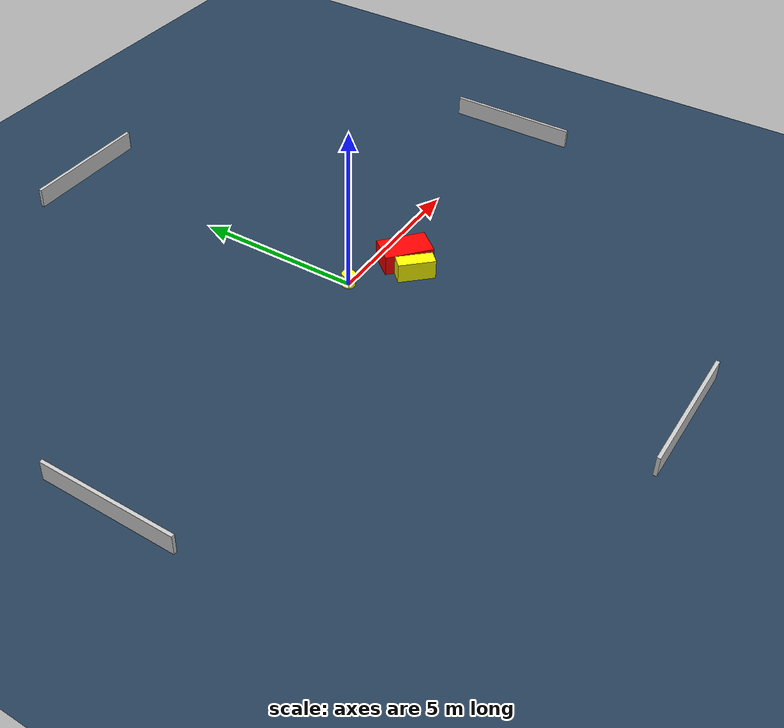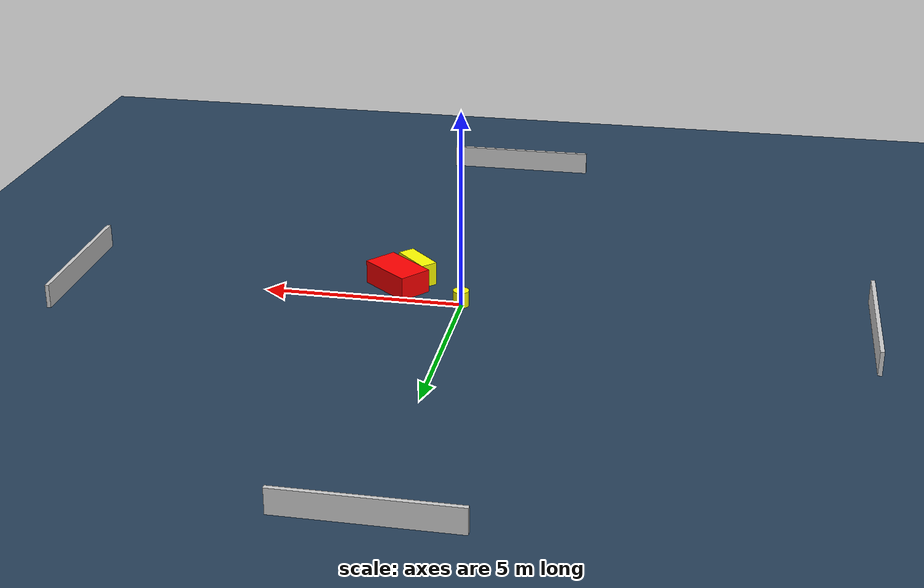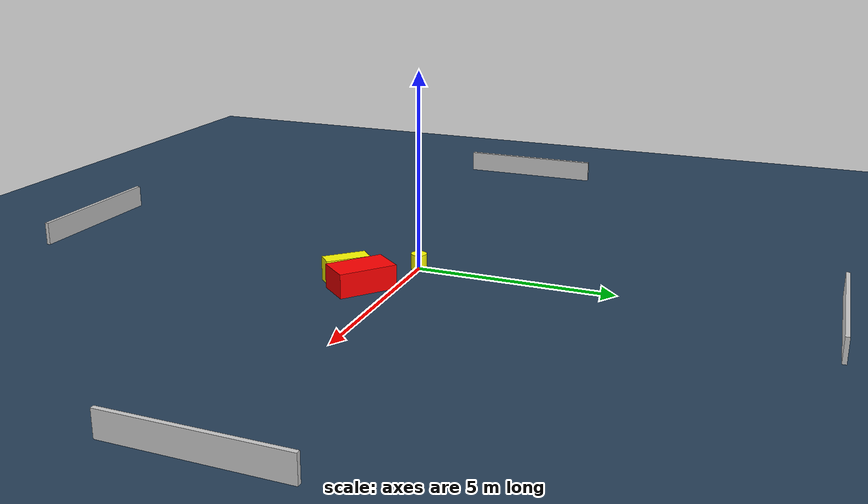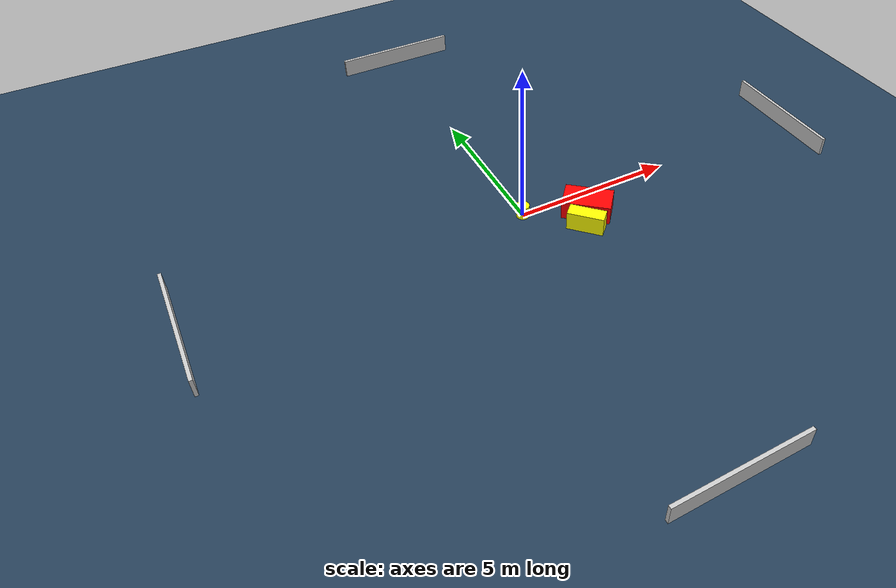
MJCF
<?xml version="1.0" ?>
<mujoco model="generated_environment">
  <option timestep="0.01" integrator="RK4" cone="elliptic"/>
  <default>
    <geom density="1"/>
  </default>
  <asset>
    <texture builtin="gradient" height="3072" name="skybox" rgb1="0.3 0.5 0.7" rgb2="0 0 0" type="skybox" width="512"/>
    <texture builtin="checker" height="300" name="groundplane" rgb1="0.2 0.3 0.4" rgb2="0.1 0.2 0.3" type="2d" width="300"/>
    <material name="groundplane" reflectance="0.2" texrepeat="5 5" texture="groundplane"/>
  </asset>
  <worldbody>
    <light dir="0 0 -1" directional="true" pos="0 0 1.5"/>
    <geom condim="3" friction="0.5 0.005 0.001" material="groundplane" name="floor" pos="0 0 0" size="0 0 0.05" type="plane"/>
    <body name="walls">
      <geom name="wall_1" condim="4" pos="-10.0 0.0 0.3" rgba="0.800000011920929 0.800000011920929 0.800000011920929 1.0" size="0.05 2.0 0.3" type="box"/>
      <geom name="wall_2" condim="4" pos="10.0 0.0 0.3" rgba="0.800000011920929 0.800000011920929 0.800000011920929 1.0" size="0.05 2.0 0.3" type="box"/>
      <geom name="wall_3" condim="4" pos="0.0 -10.0 0.3" rgba="0.800000011920929 0.800000011920929 0.800000011920929 1.0" size="2.0 0.05 0.3" type="box"/>
      <geom name="wall_4" condim="4" pos="0.0 10.0 0.3" rgba="0.800000011920929 0.800000011920929 0.800000011920929 1.0" size="2.0 0.05 0.3" type="box"/>
    </body>
    <body name="robot">
      <joint name="joint_x" type="slide" pos="0 0 0" axis="1 0 0"/>
      <joint name="joint_y" type="slide" pos="0 0 0" axis="0 1 0"/>
      <geom name="robot" type="cylinder" pos="0.0 0.0 0.2" size="0.2 0.2 0.0" mass="5.0" friction="1.0 0.005 0.0001" condim="4" rgba="1.0 1.0 0.0 1.0"/>
    </body>
    <body name="obstacle_1_movable">
      <geom name="obstacle_1_movable" condim="4" pos="1.3844786019562805 -1.3628181355043532 0.3" euler="0 0 224.3192035120332" friction="0.0 0.005 0.001" rgba="1.0 1.0 0.0 1.0" size="0.2159085354641989 0.5532499889962952 0.3" type="box" mass="0.1"/>
      <joint type="free"/>
    </body>
    <body name="obstacle_2_static">
      <geom name="obstacle_2_static" condim="4" pos="1.7820069117228357 -0.7756558017529116 0.3" euler="0 0 320.1399014804425" friction="0.0 0.005 0.001" rgba="1.0 0.0 0.0 1.0" size="0.7323895587464901 0.4313798671179188 0.3" type="box"/>
    </body>
  </worldbody>
  <actuator>
    <motor name="actuator_x" joint="joint_x" gear="1" ctrlrange="-1 1"/>
    <motor name="actuator_y" joint="joint_y" gear="1" ctrlrange="-1 1"/>
  </actuator>
</mujoco>
